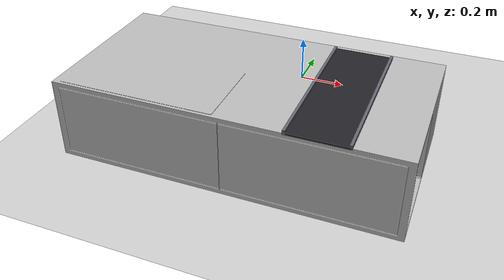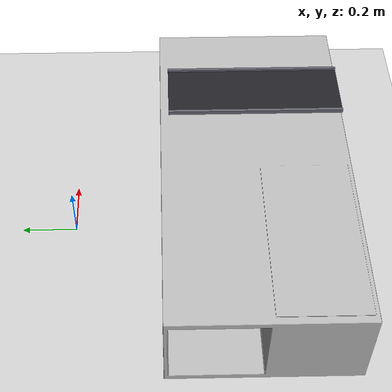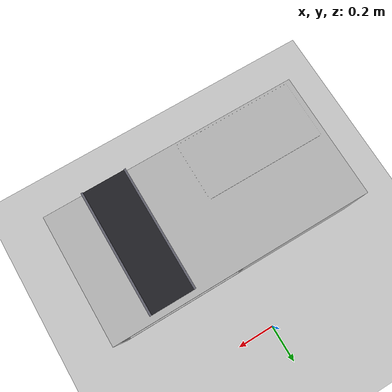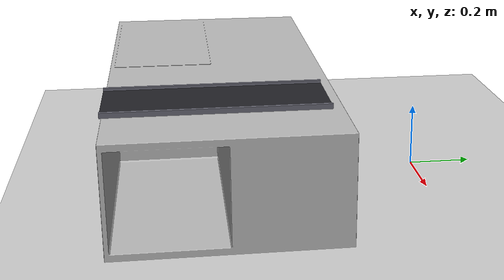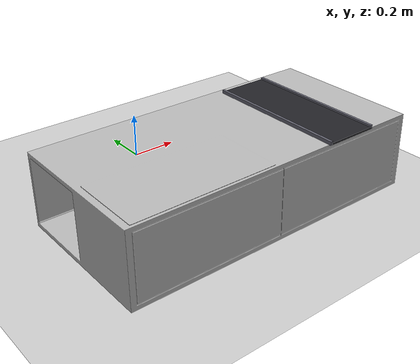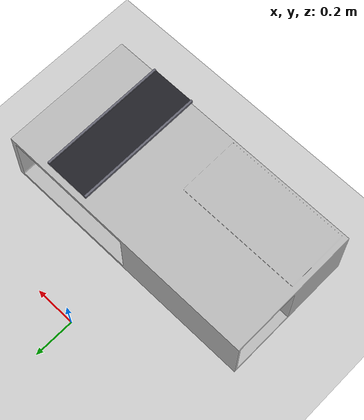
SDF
<sdf version='1.9'>
  <world name='conveyor'>
    <!-- World name is 'conveyor'; the ros_gz service bridge and the conveyor
         nodes target /world/conveyor/{create,set_pose,remove}. -->
    <gravity>0 0 -9.8</gravity>
    <magnetic_field>6e-06 2.3e-05 -4.2e-05</magnetic_field>
    <atmosphere type='adiabatic'/>
    <physics type='ode'>
      <max_step_size>0.001</max_step_size>
      <real_time_factor>1</real_time_factor>
      <real_time_update_rate>1000</real_time_update_rate>
    </physics>

    <plugin filename='ignition-gazebo-physics-system'
            name='ignition::gazebo::systems::Physics'></plugin>
    <plugin filename='ignition-gazebo-user-commands-system'
            name='ignition::gazebo::systems::UserCommands'></plugin>
    <plugin filename='ignition-gazebo-scene-broadcaster-system'
            name='ignition::gazebo::systems::SceneBroadcaster'></plugin>

    <scene>
      <ambient>0.4 0.4 0.4 1</ambient>
      <background>0.7 0.7 0.7 1</background>
      <shadows>true</shadows>
    </scene>

    <!-- Coffee table: same pose as pick_and_place.world so boxes rest at
         z=0.3657, keeping the calibrated pick heights valid. -->
    <model name='CoffeeTable_1_1'>
      <static>true</static>
      <model name='aws_robomaker_residential_CoffeeTable_01'>
        <link name='link'>
          <inertial>
            <mass>21.7</mass>
            <inertia>
              <ixx>0.81375</ixx><ixy>0</ixy><ixz>0</ixz>
              <iyy>2.76675</iyy><iyz>0</iyz><izz>3.254</izz>
            </inertia>
          </inertial>
          <collision name='collision'>
            <geometry>
              <mesh>
                <uri>model://aws_robomaker_residential_CoffeeTable_01/meshes/aws_CoffeeTable_01_collision.DAE</uri>
                <scale>1 1 1</scale>
              </mesh>
            </geometry>
            <surface>
              <contact><ode><max_vel>0.01</max_vel></ode></contact>
            </surface>
          </collision>
          <visual name='visual'>
            <geometry>
              <mesh>
                <uri>model://aws_robomaker_residential_CoffeeTable_01/meshes/aws_CoffeeTable_01_visual.DAE</uri>
              </mesh>
            </geometry>
          </visual>
        </link>
        <static>true</static>
      </model>
      <pose>-0.001145 -0.650275 0.041983 0 -0 0</pose>
      <self_collide>false</self_collide>
    </model>

    <model name='conveyor_belt'>
      <static>true</static>
      <link name='link'>
        <visual name='belt_surface'>
          <pose>0.35 -0.665 0.3655 0 0 0</pose>
          <geometry>
            <box><size>0.22 0.63 0.008</size></box>
          </geometry>
          <material>
            <ambient>0.08 0.08 0.09 1</ambient>
            <diffuse>0.13 0.13 0.15 1</diffuse>
            <specular>0.2 0.2 0.2 1</specular>
          </material>
        </visual>
        <visual name='belt_rail_left'>
          <pose>0.24 -0.665 0.3695 0 0 0</pose>
          <geometry>
            <box><size>0.01 0.63 0.016</size></box>
          </geometry>
          <material>
            <ambient>0.25 0.25 0.28 1</ambient>
            <diffuse>0.4 0.4 0.45 1</diffuse>
          </material>
        </visual>
        <visual name='belt_rail_right'>
          <pose>0.46 -0.665 0.3695 0 0 0</pose>
          <geometry>
            <box><size>0.01 0.63 0.016</size></box>
          </geometry>
          <material>
            <ambient>0.25 0.25 0.28 1</ambient>
            <diffuse>0.4 0.4 0.45 1</diffuse>
          </material>
        </visual>
      </link>
    </model>

    <model name='ground_plane'>
      <static>true</static>
      <link name='link'>
        <collision name='collision'>
          <geometry>
            <plane><normal>0 0 1</normal><size>1 1</size></plane>
          </geometry>
          <surface><friction><ode/></friction><bounce/><contact/></surface>
        </collision>
        <visual name='visual'>
          <geometry>
            <plane><normal>0 0 1</normal><size>100 100</size></plane>
          </geometry>
          <material>
            <ambient>0.8 0.8 0.8 1</ambient>
            <diffuse>0.8 0.8 0.8 1</diffuse>
            <specular>0.8 0.8 0.8 1</specular>
          </material>
        </visual>
        <pose>0 0 0 0 -0 0</pose>
      </link>
      <pose>0 0 0 0 -0 0</pose>
      <self_collide>false</self_collide>
    </model>

    <light name='sun' type='directional'>
      <pose>0 0 10 0 -0 0</pose>
      <cast_shadows>true</cast_shadows>
      <intensity>1</intensity>
      <direction>-0.5 0.1 -0.9</direction>
      <diffuse>0.8 0.8 0.8 1</diffuse>
      <specular>0.2 0.2 0.2 1</specular>
      <attenuation>
        <range>1000</range>
        <linear>0.01</linear>
        <constant>0.9</constant>
        <quadratic>0.001</quadratic>
      </attenuation>
      <spot><inner_angle>0</inner_angle><outer_angle>0</outer_angle><falloff>0</falloff></spot>
    </light>
  </world>
</sdf>
